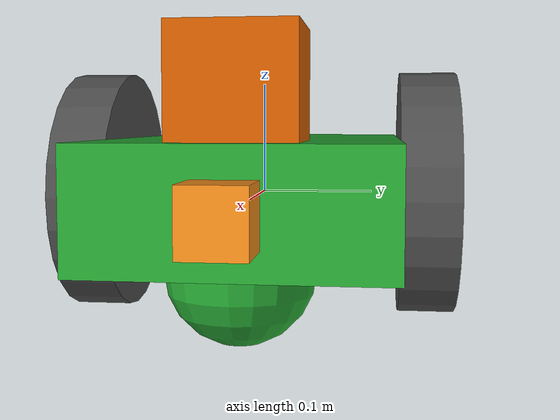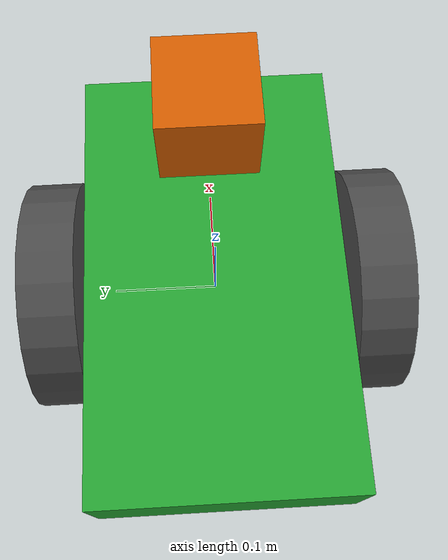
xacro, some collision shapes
<?xml version='1.0'?>

<robot name="my_robot" xmlns:xacro="http://www.ros.org/wiki/xacro">
  <xacro:include filename="$(find my_robot)/urdf/my_robot.gazebo" />
  <link name="robot_footprint"></link>

  <joint name="robot_footprint_joint" type="fixed">
    <origin xyz="0 0 0" rpy="0 0 0" />
    <parent link="robot_footprint"/>
    <child link="chassis" />
  </joint>

  <link name='chassis'>
    <pose>0 0 0.1 0 0 0</pose>

    <inertial>
      <mass value="15.0"/>
      <origin xyz="0.0 0 0" rpy=" 0 0 0"/>
      <inertia
          ixx="0.1" ixy="0" ixz="0"
          iyy="0.1" iyz="0"
          izz="0.1"
      />
    </inertial>

    <collision name='collision'>
      <origin xyz="0 0 0" rpy=" 0 0 0"/>
      <geometry>
        <box size=".43 .25 .1"/>
      </geometry>
    </collision>

    <visual name='chassis_visual'>
      <origin xyz="0 0 0" rpy=" 0 0 0"/>
      <geometry>
        <box size=".43 .25 .1"/>
      </geometry>
    </visual>

    <collision name='back_caster_collision'>
      <origin xyz="-0.15 0 -0.05" rpy=" 0 0 0"/>
      <geometry>
        <sphere radius="0.06"/>
      </geometry>
    </collision>

    <visual name='back_caster_visual'>
      <origin xyz="-0.15 0 -0.05" rpy=" 0 0 0"/>
      <geometry>
        <sphere radius="0.06"/>
      </geometry>
    </visual>

    <collision name='front_caster_collision'>
      <origin xyz="0.15 0 -0.05" rpy=" 0 0 0"/>
      <geometry>
        <sphere radius="0.06"/>
      </geometry>
    </collision>

    <visual name='front_caster_visual'>
      <origin xyz="0.15 0 -0.05" rpy=" 0 0 0"/>
      <geometry>
        <sphere radius="0.06"/>
      </geometry>
    </visual>

  </link>

  <gazebo reference="chassis">
    <material>Gazebo/Green</material>
  </gazebo>

  <link name='left_wheel'>
    <visual name='left_wheel_visual'>
      <origin xyz="0 0 0" rpy=" 0 1.5707 1.5707"/>
      <geometry>
        <cylinder radius="0.11" length="0.05"/>
      </geometry>
    </visual>

    <collision name='left_wheel_collision'>
      <origin xyz="0 0 0" rpy=" 0 1.5707 1.5707"/>
      <geometry>
        <cylinder radius="0.11" length="0.05"/>
      </geometry>
    </collision>

    <inertial>
      <mass value="5.0"/>
      <origin xyz="0.0 0 0" rpy=" 0 0 0"/>
      <inertia
          ixx="0.1" ixy="0" ixz="0"
          iyy="0.1" iyz="0"
          izz="0.1"
      />
    </inertial>

  </link>
  <gazebo reference="left_wheel">
    <material>Gazebo/DarkGray</material>
  </gazebo>

  <joint type="continuous" name="left_wheel_hinge">
    <origin xyz="0 0.15 0" rpy="0 0 0"/>
    <child link="left_wheel"/>
    <parent link="chassis"/>
    <axis xyz="0 1 0" rpy="0 0 0"/>
    <limit effort="10000" velocity="1000"/>
    <dynamics damping="0.3" friction="0.3"/>
  </joint>

  <link name='right_wheel'>
    <visual name='right_wheel_visual'>
      <origin xyz="0 0 0" rpy=" 0 1.5707 1.5707"/>
      <geometry>
        <cylinder radius="0.11" length="0.05"/>
      </geometry>
    </visual>

    <collision name='right_wheel_collision'>
      <origin xyz="0 0 0" rpy=" 0 1.5707 1.5707"/>
      <geometry>
        <cylinder radius="0.11" length="0.05"/>
      </geometry>
    </collision>

    <inertial>
      <mass value="5.0"/>
      <origin xyz="0.0 0 0" rpy=" 0 0 0"/>
      <inertia
          ixx="0.1" ixy="0" ixz="0"
          iyy="0.1" iyz="0"
          izz="0.1"
      />
    </inertial>
  </link>

  <gazebo reference="right_wheel">
    <material>Gazebo/DarkGray</material>
  </gazebo>

  <joint type="continuous" name="right_wheel_hinge">
    <origin xyz="0 -0.15 0" rpy="0 0 0"/>
    <child link="right_wheel"/>
    <parent link="chassis"/>
    <axis xyz="0 1 0" rpy="0 0 0"/>
    <limit effort="10000" velocity="1000"/>
    <dynamics damping="0.3" friction="0.3"/>
  </joint>

  <link name='camera'>
    <visual name='camera_visual'>
      <origin xyz="0 0 0" rpy=" 0 0 0"/>
      <geometry>
        <box size="0.05 0.05 0.05"/>
      </geometry>
    </visual>

    <collision name='camera_collision'>
      <origin xyz="0 0 0" rpy=" 0 0 0"/>
      <geometry>
        <box size="0.05 0.05 0.05"/>
      </geometry>
    </collision>

    <inertial>
      <mass value="0.1"/>
      <origin xyz="0.0 0 0" rpy=" 0 0 0"/>
      <inertia
          ixx="1e-6" ixy="0" ixz="0"
          iyy="1e-6" iyz="0"
          izz="1e-6"
      />
    </inertial>

  </link>

  <gazebo reference="camera">
    <material>Gazebo/Orange</material>
  </gazebo>

  <joint type="fixed" name="camera_joint">
    <origin xyz="0.25 0 0" rpy="0 0 0"/>
    <child link="camera"/>
    <parent link="chassis"/>
    <axis xyz="0 1 0" rpy="0 0 0"/>
  </joint>

  <link name='hokuyo'>
    <visual name='hokuyo_visual'>
      <origin xyz="0 0 0" rpy=" 0 0 0"/>
      <geometry>
        <mesh filename="package://my_robot/meshes/hokuyo.dae"/>
      </geometry>
    </visual>

    <collision name='hokuyo_collision'>
      <origin xyz="0 0 0" rpy=" 0 0 0"/>
      <geometry>
        <box size="0.1 0.1 0.1"/>
      </geometry>
    </collision>

    <inertial>
      <mass value="1e-5"/>
      <origin xyz="0.0 0 0" rpy=" 0 0 0"/>
      <inertia
          ixx="1e-6" ixy="0" ixz="0"
          iyy="1e-6" iyz="0"
          izz="1e-6"
      />
    </inertial>

  </link>

  <joint type="fixed" name="hokuyo_joint">
    <origin xyz="0.15 0 0.09" rpy="0 0 0"/>
    <child link="hokuyo"/>
    <parent link="chassis"/>
    <axis xyz="0 1 0" rpy="0 0 0"/>
  </joint>

</robot>
